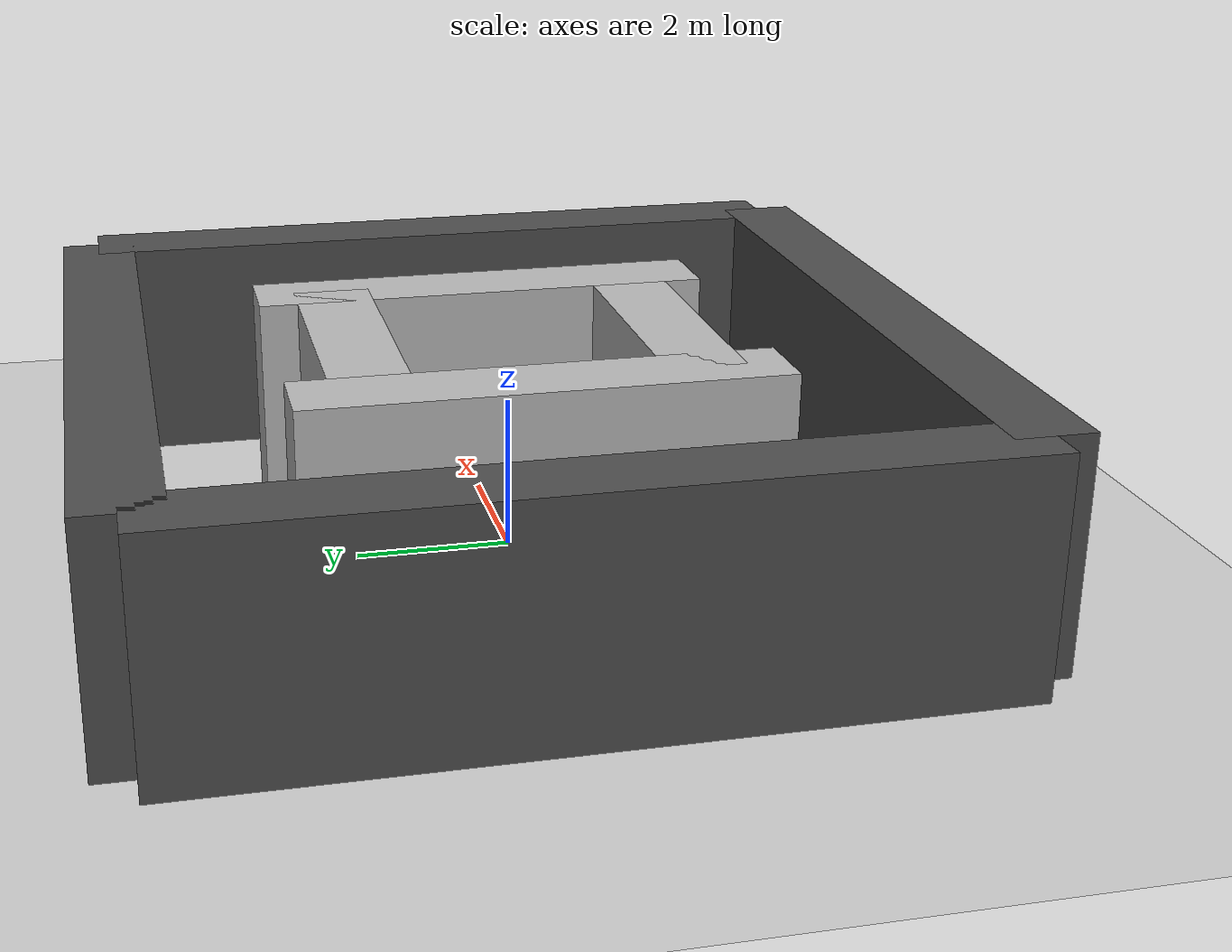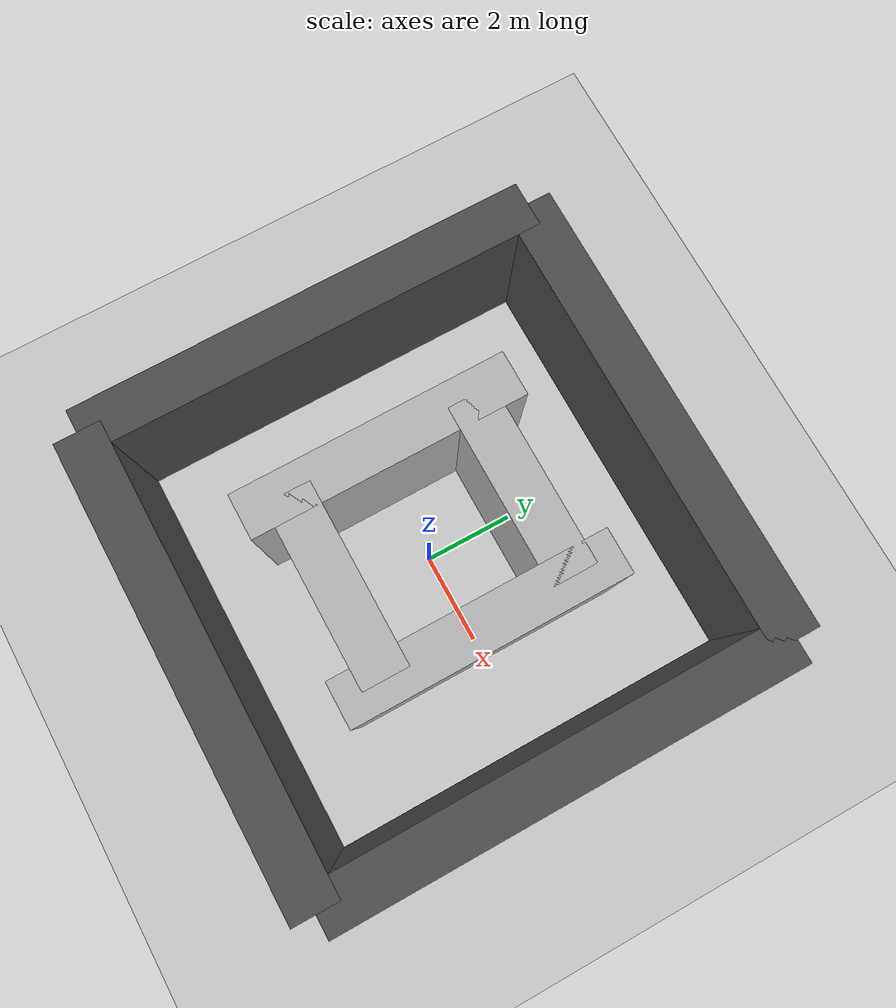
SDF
<?xml version="1.0" ?>
<sdf version="1.6">
  <world name="simple_maze_world">

    <!-- Ground plane -->
    <include>
      <uri>model://ground_plane</uri>
    </include>

    <!-- Sun for lighting -->
    <include>
      <uri>model://sun</uri>
    </include>

    <!-- Maze walls (3m height, 1m thickness) -->
    <!-- Outer walls -->
    <model name="wall_north">
      <static>true</static>
      <pose>0 5 1.5 0 0 0</pose>
      <link name="link">
        <collision name="collision">
          <geometry>
            <box>
              <size>10 1 3</size>
            </box>
          </geometry>
        </collision>
        <visual name="visual">
          <geometry>
            <box>
              <size>10 1 3</size>
            </box>
          </geometry>
          <material>
            <ambient>0.3 0.3 0.3 1</ambient>
          </material>
        </visual>
      </link>
    </model>

    <model name="wall_south">
      <static>true</static>
      <pose>0 -5 1.5 0 0 0</pose>
      <link name="link">
        <collision name="collision">
          <geometry>
            <box>
              <size>10 1 3</size>
            </box>
          </geometry>
        </collision>
        <visual name="visual">
          <geometry>
            <box>
              <size>10 1 3</size>
            </box>
          </geometry>
          <material>
            <ambient>0.3 0.3 0.3 1</ambient>
          </material>
        </visual>
      </link>
    </model>

    <model name="wall_east">
      <static>true</static>
      <pose>5 0 1.5 0 0 0</pose>
      <link name="link">
        <collision name="collision">
          <geometry>
            <box>
              <size>1 10 3</size>
            </box>
          </geometry>
        </collision>
        <visual name="visual">
          <geometry>
            <box>
              <size>1 10 3</size>
            </box>
          </geometry>
          <material>
            <ambient>0.3 0.3 0.3 1</ambient>
          </material>
        </visual>
      </link>
    </model>

    <model name="wall_west">
      <static>true</static>
      <pose>-5 0 1.5 0 0 0</pose>
      <link name="link">
        <collision name="collision">
          <geometry>
            <box>
              <size>1 10 3</size>
            </box>
          </geometry>
        </collision>
        <visual name="visual">
          <geometry>
            <box>
              <size>1 10 3</size>
            </box>
          </geometry>
          <material>
            <ambient>0.3 0.3 0.3 1</ambient>
          </material>
        </visual>
      </link>
    </model>

    <!-- Inner maze walls -->
    <model name="maze_wall_1">
      <static>true</static>
      <pose>-2 0 1.5 0 0 0</pose>
      <link name="link">
        <collision name="collision">
          <geometry>
            <box>
              <size>1 6 3</size>
            </box>
          </geometry>
        </collision>
        <visual name="visual">
          <geometry>
            <box>
              <size>1 6 3</size>
            </box>
          </geometry>
        </visual>
      </link>
    </model>

    <model name="maze_wall_2">
      <static>true</static>
      <pose>2 0 1.5 0 0 0</pose>
      <link name="link">
        <collision name="collision">
          <geometry>
            <box>
              <size>1 6 3</size>
            </box>
          </geometry>
        </collision>
        <visual name="visual">
          <geometry>
            <box>
              <size>1 6 3</size>
            </box>
          </geometry>
        </visual>
      </link>
    </model>

    <model name="maze_wall_3">
      <static>true</static>
      <pose>0 2 1.5 0 0 0</pose>
      <link name="link">
        <collision name="collision">
          <geometry>
            <box>
              <size>4 1 3</size>
            </box>
          </geometry>
        </collision>
        <visual name="visual">
          <geometry>
            <box>
              <size>4 1 3</size>
            </box>
          </geometry>
        </visual>
      </link>
    </model>

    <model name="maze_wall_4">
      <static>true</static>
      <pose>0 -2 1.5 0 0 0</pose>
      <link name="link">
        <collision name="collision">
          <geometry>
            <box>
              <size>4 1 3</size>
            </box>
          </geometry>
        </collision>
        <visual name="visual">
          <geometry>
            <box>
              <size>4 1 3</size>
            </box>
          </geometry>
        </visual>
      </link>
    </model>

  </world>
</sdf>
